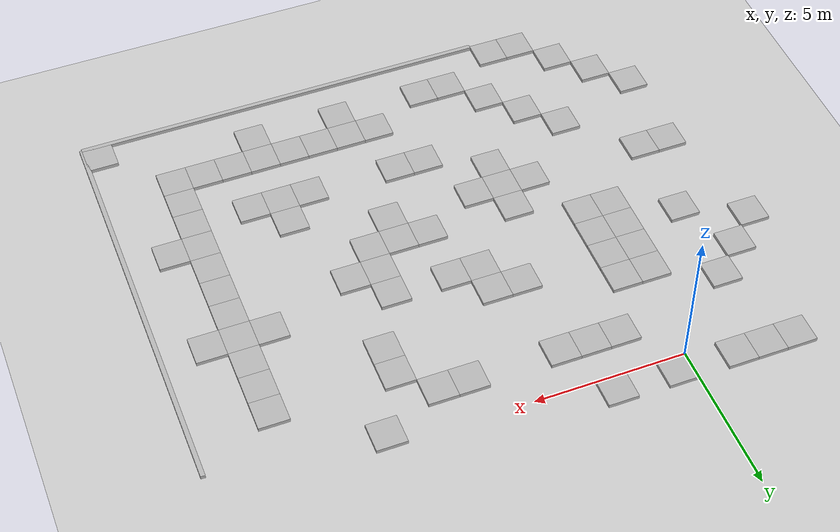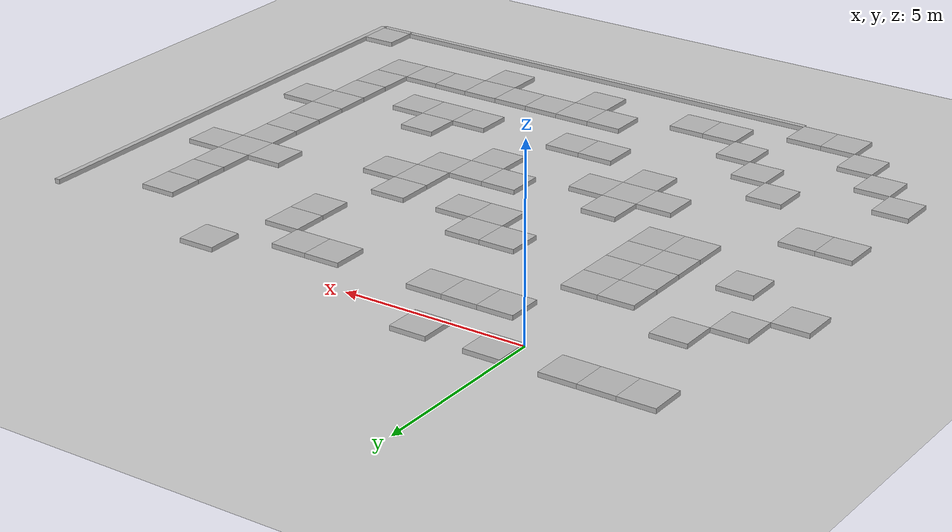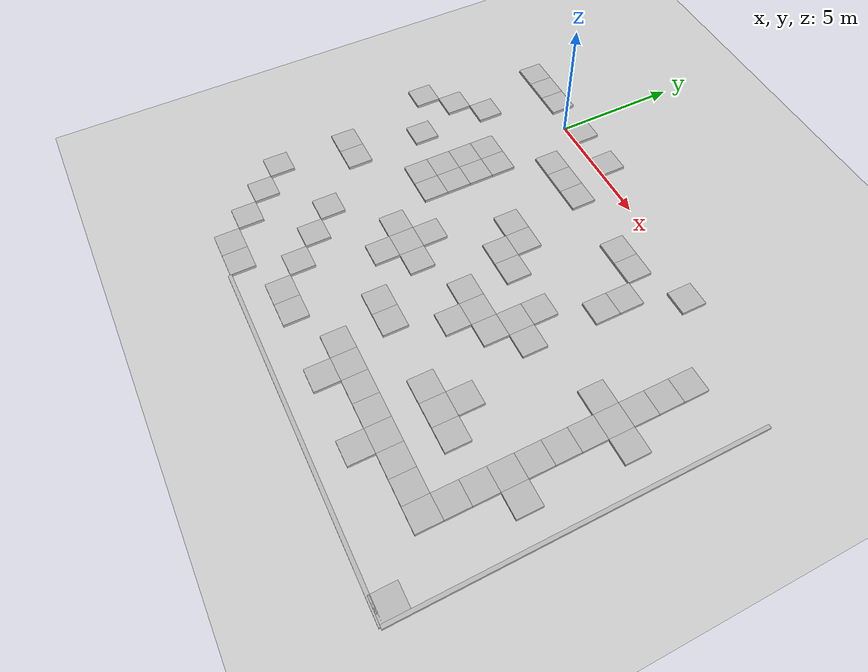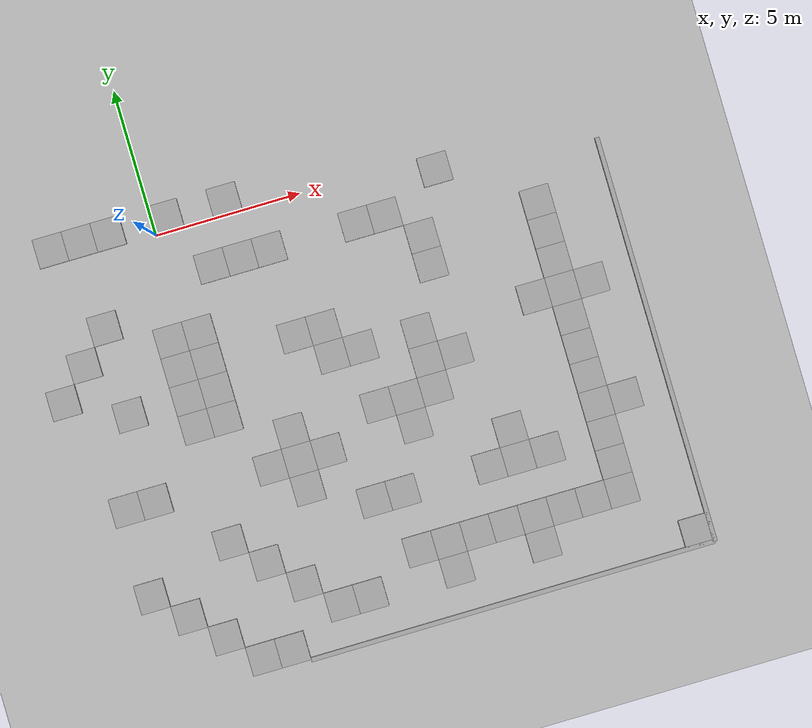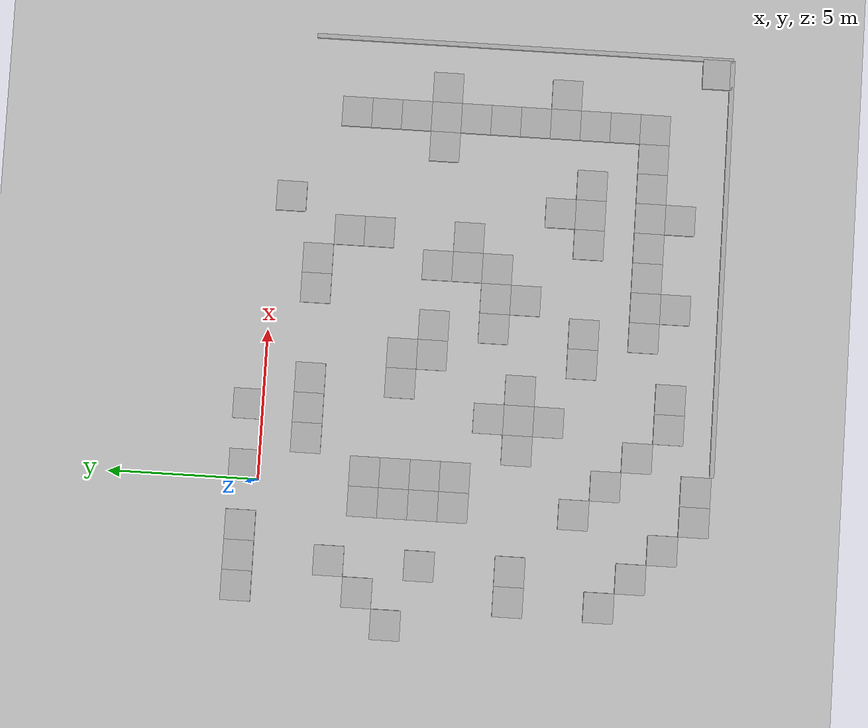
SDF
<sdf version="1.7">
 <world name="default">
  <model name="ground_plane">
   <static>1</static>
   <link name="link">
    <collision name="collision">
     <geometry><plane><normal>0 0 1</normal><size>100 100</size></plane></geometry>
     <surface>
      <contact><collide_bitmask>65535</collide_bitmask></contact>
      <friction><ode><mu>100</mu><mu2>50</mu2></ode></friction>
     </surface>
    </collision>
    <visual name="visual">
     <cast_shadows>0</cast_shadows>
     <geometry><plane><normal>0 0 1</normal><size>100 100</size></plane></geometry>
     <material>
      <script><uri>file://media/materials/scripts/gazebo.material</uri><name>Gazebo/Grey</name></script>
     </material>
    </visual>
   </link>
  </model>
  <model name="concrete_barrier_14m_3">
   <static>1</static>
   <link name="link">
    <collision name="concrete_barrier_14m_01">
     <pose>-0 0 0.3 0 -0 0</pose>
     <geometry><box><size>14 0.15 0.6</size></box></geometry>
    </collision>
    <visual name="concrete_barrier_14m_visual">
     <geometry><mesh><uri>model://concrete_barrier_14m/meshes/concrete_barrier_14m.dae</uri></mesh></geometry>
    </visual>
   </link>
   <pose>15 -8 0 0 -0 0</pose>
  </model>
  <model name="concrete_barrier_14m_6">
   <static>1</static>
   <link name="link">
    <collision name="concrete_barrier_14m_01">
     <pose>-0 0 0.3 0 -0 0</pose>
     <geometry><box><size>14 0.15 0.6</size></box></geometry>
    </collision>
    <visual name="concrete_barrier_14m_visual">
     <geometry><mesh><uri>model://concrete_barrier_14m/meshes/concrete_barrier_14m.dae</uri></mesh></geometry>
    </visual>
   </link>
   <pose>8 -15 0 0 0 -1.56953</pose>
  </model>
  <model name="concrete_cube_1m_2">
   <static>1</static>
   <link name="link">
    <collision name="concrete_cube_1m">
     <pose>-0 0 0.3 0 -0 0</pose>
     <geometry><box><size>1 1 0.6</size></box></geometry>
    </collision>
    <visual name="concrete_cube_1m_visual">
     <geometry><mesh><uri>model://concrete_cube_1m/meshes/concrete_cube_1m.dae</uri></mesh></geometry>
    </visual>
   </link>
   <pose>-1.5 0.5 0 0 -0 0</pose>
  </model>
  <model name="concrete_cube_1m_8">
   <static>1</static>
   <link name="link">
    <collision name="concrete_cube_1m">
     <pose>-0 0 0.3 0 -0 0</pose>
     <geometry><box><size>1 1 0.6</size></box></geometry>
    </collision>
    <visual name="concrete_cube_1m_visual">
     <geometry><mesh><uri>model://concrete_cube_1m/meshes/concrete_cube_1m.dae</uri></mesh></geometry>
    </visual>
   </link>
   <pose>-0.5 -4.5 0 0 -0 0</pose>
  </model>
  <model name="concrete_cube_1m_9">
   <static>1</static>
   <link name="link">
    <collision name="concrete_cube_1m">
     <pose>-0 0 0.3 0 -0 0</pose>
     <geometry><box><size>1 1 0.6</size></box></geometry>
    </collision>
    <visual name="concrete_cube_1m_visual">
     <geometry><mesh><uri>model://concrete_cube_1m/meshes/concrete_cube_1m.dae</uri></mesh></geometry>
    </visual>
   </link>
   <pose>0.5 -4.5 0 0 -0 0</pose>
  </model>
  <model name="concrete_cube_1m_10">
   <static>1</static>
   <link name="link">
    <collision name="concrete_cube_1m">
     <pose>-0 0 0.3 0 -0 0</pose>
     <geometry><box><size>1 1 0.6</size></box></geometry>
    </collision>
    <visual name="concrete_cube_1m_visual">
     <geometry><mesh><uri>model://concrete_cube_1m/meshes/concrete_cube_1m.dae</uri></mesh></geometry>
    </visual>
   </link>
   <pose>4.5 -5.5 0 0 -0 0</pose>
  </model>
  <model name="concrete_cube_1m_11">
   <static>1</static>
   <link name="link">
    <collision name="concrete_cube_1m">
     <pose>-0 0 0.3 0 -0 0</pose>
     <geometry><box><size>1 1 0.6</size></box></geometry>
    </collision>
    <visual name="concrete_cube_1m_visual">
     <geometry><mesh><uri>model://concrete_cube_1m/meshes/concrete_cube_1m.dae</uri></mesh></geometry>
    </visual>
   </link>
   <pose>5.5 -5.5 0 0 -0 0</pose>
  </model>
  <model name="concrete_cube_1m_42">
   <static>1</static>
   <link name="link">
    <collision name="concrete_cube_1m">
     <pose>-0 0 0.3 0 -0 0</pose>
     <geometry><box><size>1 1 0.6</size></box></geometry>
    </collision>
    <visual name="concrete_cube_1m_visual">
     <geometry><mesh><uri>model://concrete_cube_1m/meshes/concrete_cube_1m.dae</uri></mesh></geometry>
    </visual>
   </link>
   <pose>2.51365 0.491319 0 0 -0 0</pose>
  </model>
  <model name="concrete_cube_1m_45">
   <static>1</static>
   <link name="link">
    <collision name="concrete_cube_1m">
     <pose>-0 0 0.3 0 -0 0</pose>
     <geometry><box><size>1 1 0.6</size></box></geometry>
    </collision>
    <visual name="concrete_cube_1m_visual">
     <geometry><mesh><uri>model://concrete_cube_1m/meshes/concrete_cube_1m.dae</uri></mesh></geometry>
    </visual>
   </link>
   <pose>-2.5 0.5 0 0 -0 0</pose>
  </model>
  <model name="concrete_cube_1m_46">
   <static>1</static>
   <link name="link">
    <collision name="concrete_cube_1m">
     <pose>-0 0 0.3 0 -0 0</pose>
     <geometry><box><size>1 1 0.6</size></box></geometry>
    </collision>
    <visual name="concrete_cube_1m_visual">
     <geometry><mesh><uri>model://concrete_cube_1m/meshes/concrete_cube_1m.dae</uri></mesh></geometry>
    </visual>
   </link>
   <pose>-3.5 0.5 0 0 -0 0</pose>
  </model>
  <model name="concrete_cube_1m_64">
   <static>1</static>
   <link name="link">
    <collision name="concrete_cube_1m">
     <pose>-0 0 0.3 0 -0 0</pose>
     <geometry><box><size>1 1 0.6</size></box></geometry>
    </collision>
    <visual name="concrete_cube_1m_visual">
     <geometry><mesh><uri>model://concrete_cube_1m/meshes/concrete_cube_1m.dae</uri></mesh></geometry>
    </visual>
   </link>
   <pose>7.5 -7.5 0 0 -0 0</pose>
  </model>
  <model name="concrete_cube_1m_65">
   <static>1</static>
   <link name="link">
    <collision name="concrete_cube_1m">
     <pose>-0 0 0.3 0 -0 0</pose>
     <geometry><box><size>1 1 0.6</size></box></geometry>
    </collision>
    <visual name="concrete_cube_1m_visual">
     <geometry><mesh><uri>model://concrete_cube_1m/meshes/concrete_cube_1m.dae</uri></mesh></geometry>
    </visual>
   </link>
   <pose>7.5 -6.5 0 0 -0 0</pose>
  </model>
  <model name="concrete_cube_1m_66">
   <static>1</static>
   <link name="link">
    <collision name="concrete_cube_1m">
     <pose>-0 0 0.3 0 -0 0</pose>
     <geometry><box><size>1 1 0.6</size></box></geometry>
    </collision>
    <visual name="concrete_cube_1m_visual">
     <geometry><mesh><uri>model://concrete_cube_1m/meshes/concrete_cube_1m.dae</uri></mesh></geometry>
    </visual>
   </link>
   <pose>7.5 -5.5 0 0 -0 0</pose>
  </model>
  <model name="concrete_cube_1m_67">
   <static>1</static>
   <link name="link">
    <collision name="concrete_cube_1m">
     <pose>-0 0 0.3 0 -0 0</pose>
     <geometry><box><size>1 1 0.6</size></box></geometry>
    </collision>
    <visual name="concrete_cube_1m_visual">
     <geometry><mesh><uri>model://concrete_cube_1m/meshes/concrete_cube_1m.dae</uri></mesh></geometry>
    </visual>
   </link>
   <pose>6.5 -7.5 0 0 -0 0</pose>
  </model>
  <model name="concrete_cube_1m_68">
   <static>1</static>
   <link name="link">
    <collision name="concrete_cube_1m">
     <pose>-0 0 0.3 0 -0 0</pose>
     <geometry><box><size>1 1 0.6</size></box></geometry>
    </collision>
    <visual name="concrete_cube_1m_visual">
     <geometry><mesh><uri>model://concrete_cube_1m/meshes/concrete_cube_1m.dae</uri></mesh></geometry>
    </visual>
   </link>
   <pose>5.5 -7.5 0 0 -0 0</pose>
  </model>
  <model name="concrete_cube_1m_69">
   <static>1</static>
   <link name="link">
    <collision name="concrete_cube_1m">
     <pose>-0 0 0.3 0 -0 0</pose>
     <geometry><box><size>1 1 0.6</size></box></geometry>
    </collision>
    <visual name="concrete_cube_1m_visual">
     <geometry><mesh><uri>model://concrete_cube_1m/meshes/concrete_cube_1m.dae</uri></mesh></geometry>
    </visual>
   </link>
   <pose>8.5 -2.5 0 0 -0 0</pose>
  </model>
  <model name="concrete_cube_1m_70">
   <static>1</static>
   <link name="link">
    <collision name="concrete_cube_1m">
     <pose>-0 0 0.3 0 -0 0</pose>
     <geometry><box><size>1 1 0.6</size></box></geometry>
    </collision>
    <visual name="concrete_cube_1m_visual">
     <geometry><mesh><uri>model://concrete_cube_1m/meshes/concrete_cube_1m.dae</uri></mesh></geometry>
    </visual>
   </link>
   <pose>9.52896 -0.491132 0 0 -0 0</pose>
  </model>
  <model name="concrete_cube_1m_71">
   <static>1</static>
   <link name="link">
    <collision name="concrete_cube_1m">
     <pose>-0 0 0.3 0 -0 0</pose>
     <geometry><box><size>1 1 0.6</size></box></geometry>
    </collision>
    <visual name="concrete_cube_1m_visual">
     <geometry><mesh><uri>model://concrete_cube_1m/meshes/concrete_cube_1m.dae</uri></mesh></geometry>
    </visual>
   </link>
   <pose>7.5 -1.5 0 0 -0 0</pose>
  </model>
  <model name="concrete_cube_1m_72">
   <static>1</static>
   <link name="link">
    <collision name="concrete_cube_1m">
     <pose>-0 0 0.3 0 -0 0</pose>
     <geometry><box><size>1 1 0.6</size></box></geometry>
    </collision>
    <visual name="concrete_cube_1m_visual">
     <geometry><mesh><uri>model://concrete_cube_1m/meshes/concrete_cube_1m.dae</uri></mesh></geometry>
    </visual>
   </link>
   <pose>8.5 -3.5 0 0 -0 0</pose>
  </model>
  <model name="concrete_cube_1m_73">
   <static>1</static>
   <link name="link">
    <collision name="concrete_cube_1m">
     <pose>-0 0 0.3 0 -0 0</pose>
     <geometry><box><size>1 1 0.6</size></box></geometry>
    </collision>
    <visual name="concrete_cube_1m_visual">
     <geometry><mesh><uri>model://concrete_cube_1m/meshes/concrete_cube_1m.dae</uri></mesh></geometry>
    </visual>
   </link>
   <pose>6.5 -1.5 0 0 -0 0</pose>
  </model>
  <model name="concrete_cube_1m_74">
   <static>1</static>
   <link name="link">
    <collision name="concrete_cube_1m">
     <pose>-0 0 0.3 0 -0 0</pose>
     <geometry><box><size>1 1 0.6</size></box></geometry>
    </collision>
    <visual name="concrete_cube_1m_visual">
     <geometry><mesh><uri>model://concrete_cube_1m/meshes/concrete_cube_1m.dae</uri></mesh></geometry>
    </visual>
   </link>
   <pose>4.5 -4.5 0 0 -0 0</pose>
  </model>
  <model name="concrete_cube_1m_75">
   <static>1</static>
   <link name="link">
    <collision name="concrete_cube_1m">
     <pose>-0 0 0.3 0 -0 0</pose>
     <geometry><box><size>1 1 0.6</size></box></geometry>
    </collision>
    <visual name="concrete_cube_1m_visual">
     <geometry><mesh><uri>model://concrete_cube_1m/meshes/concrete_cube_1m.dae</uri></mesh></geometry>
    </visual>
   </link>
   <pose>3.5 -4.5 0 0 -0 0</pose>
  </model>
  <model name="concrete_cube_1m_76">
   <static>1</static>
   <link name="link">
    <collision name="concrete_cube_1m">
     <pose>-0 0 0.3 0 -0 0</pose>
     <geometry><box><size>1 1 0.6</size></box></geometry>
    </collision>
    <visual name="concrete_cube_1m_visual">
     <geometry><mesh><uri>model://concrete_cube_1m/meshes/concrete_cube_1m.dae</uri></mesh></geometry>
    </visual>
   </link>
   <pose>0.5 -3.5 0 0 -0 0</pose>
  </model>
  <model name="concrete_cube_1m_77">
   <static>1</static>
   <link name="link">
    <collision name="concrete_cube_1m">
     <pose>-0 0 0.3 0 -0 0</pose>
     <geometry><box><size>1 1 0.6</size></box></geometry>
    </collision>
    <visual name="concrete_cube_1m_visual">
     <geometry><mesh><uri>model://concrete_cube_1m/meshes/concrete_cube_1m.dae</uri></mesh></geometry>
    </visual>
   </link>
   <pose>-0.5 -3.5 0 0 -0 0</pose>
  </model>
  <model name="concrete_cube_1m_78">
   <static>1</static>
   <link name="link">
    <collision name="concrete_cube_1m">
     <pose>-0 0 0.3 0 -0 0</pose>
     <geometry><box><size>1 1 0.6</size></box></geometry>
    </collision>
    <visual name="concrete_cube_1m_visual">
     <geometry><mesh><uri>model://concrete_cube_1m/meshes/concrete_cube_1m.dae</uri></mesh></geometry>
    </visual>
   </link>
   <pose>0.5 -6.5 0 0 -0 0</pose>
  </model>
  <model name="concrete_cube_1m_79">
   <static>1</static>
   <link name="link">
    <collision name="concrete_cube_1m">
     <pose>-0 0 0.3 0 -0 0</pose>
     <geometry><box><size>1 1 0.6</size></box></geometry>
    </collision>
    <visual name="concrete_cube_1m_visual">
     <geometry><mesh><uri>model://concrete_cube_1m/meshes/concrete_cube_1m.dae</uri></mesh></geometry>
    </visual>
   </link>
   <pose>0.5 -5.5 0 0 -0 0</pose>
  </model>
  <model name="concrete_cube_1m_80">
   <static>1</static>
   <link name="link">
    <collision name="concrete_cube_1m">
     <pose>-0 0 0.3 0 -0 0</pose>
     <geometry><box><size>1 1 0.6</size></box></geometry>
    </collision>
    <visual name="concrete_cube_1m_visual">
     <geometry><mesh><uri>model://concrete_cube_1m/meshes/concrete_cube_1m.dae</uri></mesh></geometry>
    </visual>
   </link>
   <pose>-0.5 -6.5 0 0 -0 0</pose>
  </model>
  <model name="concrete_cube_1m_81">
   <static>1</static>
   <link name="link">
    <collision name="concrete_cube_1m">
     <pose>-0 0 0.3 0 -0 0</pose>
     <geometry><box><size>1 1 0.6</size></box></geometry>
    </collision>
    <visual name="concrete_cube_1m_visual">
     <geometry><mesh><uri>model://concrete_cube_1m/meshes/concrete_cube_1m.dae</uri></mesh></geometry>
    </visual>
   </link>
   <pose>-0.5 -5.5 0 0 -0 0</pose>
  </model>
  <model name="concrete_cube_1m_82">
   <static>1</static>
   <link name="link">
    <collision name="concrete_cube_1m">
     <pose>-0 0 0.3 0 -0 0</pose>
     <geometry><box><size>1 1 0.6</size></box></geometry>
    </collision>
    <visual name="concrete_cube_1m_visual">
     <geometry><mesh><uri>model://concrete_cube_1m/meshes/concrete_cube_1m.dae</uri></mesh></geometry>
    </visual>
   </link>
   <pose>2.5 -8.5 0 0 -0 0</pose>
  </model>
  <model name="concrete_cube_1m_83">
   <static>1</static>
   <link name="link">
    <collision name="concrete_cube_1m">
     <pose>-0 0 0.3 0 -0 0</pose>
     <geometry><box><size>1 1 0.6</size></box></geometry>
    </collision>
    <visual name="concrete_cube_1m_visual">
     <geometry><mesh><uri>model://concrete_cube_1m/meshes/concrete_cube_1m.dae</uri></mesh></geometry>
    </visual>
   </link>
   <pose>3.5 -8.5 0 0 -0 0</pose>
  </model>
  <model name="concrete_cube_1m_84">
   <static>1</static>
   <link name="link">
    <collision name="concrete_cube_1m">
     <pose>-0 0 0.3 0 -0 0</pose>
     <geometry><box><size>1 1 0.6</size></box></geometry>
    </collision>
    <visual name="concrete_cube_1m_visual">
     <geometry><mesh><uri>model://concrete_cube_1m/meshes/concrete_cube_1m.dae</uri></mesh></geometry>
    </visual>
   </link>
   <pose>3.5 -1.5 0 0 -0 0</pose>
  </model>
  <model name="concrete_cube_1m_85">
   <static>1</static>
   <link name="link">
    <collision name="concrete_cube_1m">
     <pose>-0 0 0.3 0 -0 0</pose>
     <geometry><box><size>1 1 0.6</size></box></geometry>
    </collision>
    <visual name="concrete_cube_1m_visual">
     <geometry><mesh><uri>model://concrete_cube_1m/meshes/concrete_cube_1m.dae</uri></mesh></geometry>
    </visual>
   </link>
   <pose>2.5 -1.5 0 0 -0 0</pose>
  </model>
  <model name="concrete_cube_1m_86">
   <static>1</static>
   <link name="link">
    <collision name="concrete_cube_1m">
     <pose>-0 0 0.3 0 -0 0</pose>
     <geometry><box><size>1 1 0.6</size></box></geometry>
    </collision>
    <visual name="concrete_cube_1m_visual">
     <geometry><mesh><uri>model://concrete_cube_1m/meshes/concrete_cube_1m.dae</uri></mesh></geometry>
    </visual>
   </link>
   <pose>1.5 -1.5 0 0 -0 0</pose>
  </model>
  <model name="concrete_cube_1m_87">
   <static>1</static>
   <link name="link">
    <collision name="concrete_cube_1m">
     <pose>-0 0 0.3 0 -0 0</pose>
     <geometry><box><size>1 1 0.6</size></box></geometry>
    </collision>
    <visual name="concrete_cube_1m_visual">
     <geometry><mesh><uri>model://concrete_cube_1m/meshes/concrete_cube_1m.dae</uri></mesh></geometry>
    </visual>
   </link>
   <pose>2.5 -7.5 0 0 -0 0</pose>
  </model>
  <model name="concrete_cube_1m_90">
   <static>1</static>
   <link name="link">
    <collision name="concrete_cube_1m">
     <pose>-0 0 0.3 0 -0 0</pose>
     <geometry><box><size>1 1 0.6</size></box></geometry>
    </collision>
    <visual name="concrete_cube_1m_visual">
     <geometry><mesh><uri>model://concrete_cube_1m/meshes/concrete_cube_1m.dae</uri></mesh></geometry>
    </visual>
   </link>
   <pose>-3.5 -8.5 0 0 -0 0</pose>
  </model>
  <model name="concrete_cube_1m_91">
   <static>1</static>
   <link name="link">
    <collision name="concrete_cube_1m">
     <pose>-0 0 0.3 0 -0 0</pose>
     <geometry><box><size>1 1 0.6</size></box></geometry>
    </collision>
    <visual name="concrete_cube_1m_visual">
     <geometry><mesh><uri>model://concrete_cube_1m/meshes/concrete_cube_1m.dae</uri></mesh></geometry>
    </visual>
   </link>
   <pose>-2.5 -8.5 0 0 -0 0</pose>
  </model>
  <model name="concrete_cube_1m_97">
   <static>1</static>
   <link name="link">
    <collision name="concrete_cube_1m">
     <pose>-0 0 0.3 0 -0 0</pose>
     <geometry><box><size>1 1 0.6</size></box></geometry>
    </collision>
    <visual name="concrete_cube_1m_visual">
     <geometry><mesh><uri>model://concrete_cube_1m/meshes/concrete_cube_1m.dae</uri></mesh></geometry>
    </visual>
   </link>
   <pose>-4.5 -4.5 0 0 -0 0</pose>
  </model>
  <model name="concrete_cube_1m_98">
   <static>1</static>
   <link name="link">
    <collision name="concrete_cube_1m">
     <pose>-0 0 0.3 0 -0 0</pose>
     <geometry><box><size>1 1 0.6</size></box></geometry>
    </collision>
    <visual name="concrete_cube_1m_visual">
     <geometry><mesh><uri>model://concrete_cube_1m/meshes/concrete_cube_1m.dae</uri></mesh></geometry>
    </visual>
   </link>
   <pose>-3.5 -3.5 0 0 -0 0</pose>
  </model>
  <model name="concrete_cube_1m_99">
   <static>1</static>
   <link name="link">
    <collision name="concrete_cube_1m">
     <pose>-0 0 0.3 0 -0 0</pose>
     <geometry><box><size>1 1 0.6</size></box></geometry>
    </collision>
    <visual name="concrete_cube_1m_visual">
     <geometry><mesh><uri>model://concrete_cube_1m/meshes/concrete_cube_1m.dae</uri></mesh></geometry>
    </visual>
   </link>
   <pose>-2.5 -2.5 0 0 -0 0</pose>
  </model>
  <model name="concrete_cube_1m_103">
   <static>1</static>
   <link name="link">
    <collision name="concrete_cube_1m">
     <pose>-0 0 0.3 0 -0 0</pose>
     <geometry><box><size>1 1 0.6</size></box></geometry>
    </collision>
    <visual name="concrete_cube_1m_visual">
     <geometry><mesh><uri>model://concrete_cube_1m/meshes/concrete_cube_1m.dae</uri></mesh></geometry>
    </visual>
   </link>
   <pose>-2.5 -5.5 0 0 -0 0</pose>
  </model>
  <model name="concrete_cube_1m_104">
   <static>1</static>
   <link name="link">
    <collision name="concrete_cube_1m">
     <pose>-0 0 0.3 0 -0 0</pose>
     <geometry><box><size>1 1 0.6</size></box></geometry>
    </collision>
    <visual name="concrete_cube_1m_visual">
     <geometry><mesh><uri>model://concrete_cube_1m/meshes/concrete_cube_1m.dae</uri></mesh></geometry>
    </visual>
   </link>
   <pose>6.5 -8.5 0 0 -0 0</pose>
  </model>
  <model name="concrete_cube_1m_105">
   <static>1</static>
   <link name="link">
    <collision name="concrete_cube_1m">
     <pose>-0 0 0.3 0 -0 0</pose>
     <geometry><box><size>1 1 0.6</size></box></geometry>
    </collision>
    <visual name="concrete_cube_1m_visual">
     <geometry><mesh><uri>model://concrete_cube_1m/meshes/concrete_cube_1m.dae</uri></mesh></geometry>
    </visual>
   </link>
   <pose>8.5 -6.5 0 0 -0 0</pose>
  </model>
  <model name="concrete_cube_1m_106">
   <static>1</static>
   <link name="link">
    <collision name="concrete_cube_1m">
     <pose>-0 0 0.3 0 -0 0</pose>
     <geometry><box><size>1 1 0.6</size></box></geometry>
    </collision>
    <visual name="concrete_cube_1m_visual">
     <geometry><mesh><uri>model://concrete_cube_1m/meshes/concrete_cube_1m.dae</uri></mesh></geometry>
    </visual>
   </link>
   <pose>9.5 -9.5 0 0 -0 0</pose>
  </model>
  <model name="concrete_cube_1m_107">
   <static>1</static>
   <link name="link">
    <collision name="concrete_cube_1m">
     <pose>-0 0 0.3 0 -0 0</pose>
     <geometry><box><size>1 1 0.6</size></box></geometry>
    </collision>
    <visual name="concrete_cube_1m_visual">
     <geometry><mesh><uri>model://concrete_cube_1m/meshes/concrete_cube_1m.dae</uri></mesh></geometry>
    </visual>
   </link>
   <pose>0.5 -14.5 0 0 -0 0</pose>
  </model>
  <model name="concrete_cube_1m_108">
   <static>1</static>
   <link name="link">
    <collision name="concrete_cube_1m">
     <pose>-0 0 0.3 0 -0 0</pose>
     <geometry><box><size>1 1 0.6</size></box></geometry>
    </collision>
    <visual name="concrete_cube_1m_visual">
     <geometry><mesh><uri>model://concrete_cube_1m/meshes/concrete_cube_1m.dae</uri></mesh></geometry>
    </visual>
   </link>
   <pose>-0.5 -14.5 0 0 -0 0</pose>
  </model>
  <model name="concrete_cube_1m_146">
   <static>1</static>
   <link name="link">
    <collision name="concrete_cube_1m">
     <pose>-0 0 0.3 0 -0 0</pose>
     <geometry><box><size>1 1 0.6</size></box></geometry>
    </collision>
    <visual name="concrete_cube_1m_visual">
     <geometry><mesh><uri>model://concrete_cube_1m/meshes/concrete_cube_1m.dae</uri></mesh></geometry>
    </visual>
   </link>
   <pose>0.5 0.5 0 0 -0 0</pose>
  </model>
  <model name="concrete_cube_1m_192">
   <static>1</static>
   <link name="link">
    <collision name="concrete_cube_1m">
     <pose>-0 0 0.3 0 -0 0</pose>
     <geometry><box><size>1 1 0.6</size></box></geometry>
    </collision>
    <visual name="concrete_cube_1m_visual">
     <geometry><mesh><uri>model://concrete_cube_1m/meshes/concrete_cube_1m.dae</uri></mesh></geometry>
    </visual>
   </link>
   <pose>-1.5 -13.5 0 0 -0 0</pose>
  </model>
  <model name="concrete_cube_1m_193">
   <static>1</static>
   <link name="link">
    <collision name="concrete_cube_1m">
     <pose>-0 0 0.3 0 -0 0</pose>
     <geometry><box><size>1 1 0.6</size></box></geometry>
    </collision>
    <visual name="concrete_cube_1m_visual">
     <geometry><mesh><uri>model://concrete_cube_1m/meshes/concrete_cube_1m.dae</uri></mesh></geometry>
    </visual>
   </link>
   <pose>-2.5 -12.5 0 0 -0 0</pose>
  </model>
  <model name="concrete_cube_1m_194">
   <static>1</static>
   <link name="link">
    <collision name="concrete_cube_1m">
     <pose>-0 0 0.3 0 -0 0</pose>
     <geometry><box><size>1 1 0.6</size></box></geometry>
    </collision>
    <visual name="concrete_cube_1m_visual">
     <geometry><mesh><uri>model://concrete_cube_1m/meshes/concrete_cube_1m.dae</uri></mesh></geometry>
    </visual>
   </link>
   <pose>-3.5 -11.5 0 0 -0 0</pose>
  </model>
  <model name="concrete_cube_1m_207">
   <static>1</static>
   <link name="link">
    <collision name="concrete_cube_1m">
     <pose>-0 0 0.3 0 -0 0</pose>
     <geometry><box><size>1 1 0.6</size></box></geometry>
    </collision>
    <visual name="concrete_cube_1m_visual">
     <geometry><mesh><uri>model://concrete_cube_1m/meshes/concrete_cube_1m.dae</uri></mesh></geometry>
    </visual>
   </link>
   <pose>-0.5 -10.5 0 0 -0 0</pose>
  </model>
  <model name="concrete_cube_1m_211">
   <static>1</static>
   <link name="link">
    <collision name="concrete_cube_1m">
     <pose>-0 0 0.3 0 -0 0</pose>
     <geometry><box><size>1 1 0.6</size></box></geometry>
    </collision>
    <visual name="concrete_cube_1m_visual">
     <geometry><mesh><uri>model://concrete_cube_1m/meshes/concrete_cube_1m.dae</uri></mesh></geometry>
    </visual>
   </link>
   <pose>2.5 -9.5 0 0 -0 0</pose>
  </model>
  <model name="concrete_cube_1m_212">
   <static>1</static>
   <link name="link">
    <collision name="concrete_cube_1m">
     <pose>-0 0 0.3 0 -0 0</pose>
     <geometry><box><size>1 1 0.6</size></box></geometry>
    </collision>
    <visual name="concrete_cube_1m_visual">
     <geometry><mesh><uri>model://concrete_cube_1m/meshes/concrete_cube_1m.dae</uri></mesh></geometry>
    </visual>
   </link>
   <pose>1.5 -8.5 0 0 -0 0</pose>
  </model>
  <model name="concrete_cube_1m_213">
   <static>1</static>
   <link name="link">
    <collision name="concrete_cube_1m">
     <pose>-0 0 0.3 0 -0 0</pose>
     <geometry><box><size>1 1 0.6</size></box></geometry>
    </collision>
    <visual name="concrete_cube_1m_visual">
     <geometry><mesh><uri>model://concrete_cube_1m/meshes/concrete_cube_1m.dae</uri></mesh></geometry>
    </visual>
   </link>
   <pose>0.5 -11.5 0 0 -0 0</pose>
  </model>
  <model name="concrete_cube_1m_214">
   <static>1</static>
   <link name="link">
    <collision name="concrete_cube_1m">
     <pose>-0 0 0.3 0 -0 0</pose>
     <geometry><box><size>1 1 0.6</size></box></geometry>
    </collision>
    <visual name="concrete_cube_1m_visual">
     <geometry><mesh><uri>model://concrete_cube_1m/meshes/concrete_cube_1m.dae</uri></mesh></geometry>
    </visual>
   </link>
   <pose>1.5 -12.5 0 0 -0 0</pose>
  </model>
  <model name="concrete_cube_1m_215">
   <static>1</static>
   <link name="link">
    <collision name="concrete_cube_1m">
     <pose>-0 0 0.3 0 -0 0</pose>
     <geometry><box><size>1 1 0.6</size></box></geometry>
    </collision>
    <visual name="concrete_cube_1m_visual">
     <geometry><mesh><uri>model://concrete_cube_1m/meshes/concrete_cube_1m.dae</uri></mesh></geometry>
    </visual>
   </link>
   <pose>2.5 -13.5 0 0 -0 0</pose>
  </model>
  <model name="concrete_cube_1m_216">
   <static>1</static>
   <link name="link">
    <collision name="concrete_cube_1m">
     <pose>-0 0 0.3 0 -0 0</pose>
     <geometry><box><size>1 1 0.6</size></box></geometry>
    </collision>
    <visual name="concrete_cube_1m_visual">
     <geometry><mesh><uri>model://concrete_cube_1m/meshes/concrete_cube_1m.dae</uri></mesh></geometry>
    </visual>
   </link>
   <pose>9.5 -10.5 0 0 -0 0</pose>
  </model>
  <model name="concrete_cube_1m_217">
   <static>1</static>
   <link name="link">
    <collision name="concrete_cube_1m">
     <pose>-0 0 0.3 0 -0 0</pose>
     <geometry><box><size>1 1 0.6</size></box></geometry>
    </collision>
    <visual name="concrete_cube_1m_visual">
     <geometry><mesh><uri>model://concrete_cube_1m/meshes/concrete_cube_1m.dae</uri></mesh></geometry>
    </visual>
   </link>
   <pose>10.5 -10.5 0 0 -0 0</pose>
  </model>
  <model name="concrete_cube_1m_218">
   <static>1</static>
   <link name="link">
    <collision name="concrete_cube_1m">
     <pose>-0 0 0.3 0 -0 0</pose>
     <geometry><box><size>1 1 0.6</size></box></geometry>
    </collision>
    <visual name="concrete_cube_1m_visual">
     <geometry><mesh><uri>model://concrete_cube_1m/meshes/concrete_cube_1m.dae</uri></mesh></geometry>
    </visual>
   </link>
   <pose>8.5 -10.5 0 0 -0 0</pose>
  </model>
  <model name="concrete_cube_1m_219">
   <static>1</static>
   <link name="link">
    <collision name="concrete_cube_1m">
     <pose>-0 0 0.3 0 -0 0</pose>
     <geometry><box><size>1 1 0.6</size></box></geometry>
    </collision>
    <visual name="concrete_cube_1m_visual">
     <geometry><mesh><uri>model://concrete_cube_1m/meshes/concrete_cube_1m.dae</uri></mesh></geometry>
    </visual>
   </link>
   <pose>12.5 -12.5 0 0 -0 0</pose>
  </model>
  <model name="concrete_cube_1m_220">
   <static>1</static>
   <link name="link">
    <collision name="concrete_cube_1m">
     <pose>-0 0 0.3 0 -0 0</pose>
     <geometry><box><size>1 1 0.6</size></box></geometry>
    </collision>
    <visual name="concrete_cube_1m_visual">
     <geometry><mesh><uri>model://concrete_cube_1m/meshes/concrete_cube_1m.dae</uri></mesh></geometry>
    </visual>
   </link>
   <pose>11.5 -12.5 0 0 -0 0</pose>
  </model>
  <model name="concrete_cube_1m_221">
   <static>1</static>
   <link name="link">
    <collision name="concrete_cube_1m">
     <pose>-0 0 0.3 0 -0 0</pose>
     <geometry><box><size>1 1 0.6</size></box></geometry>
    </collision>
    <visual name="concrete_cube_1m_visual">
     <geometry><mesh><uri>model://concrete_cube_1m/meshes/concrete_cube_1m.dae</uri></mesh></geometry>
    </visual>
   </link>
   <pose>10.5 -12.5 0 0 -0 0</pose>
  </model>
  <model name="concrete_cube_1m_222">
   <static>1</static>
   <link name="link">
    <collision name="concrete_cube_1m">
     <pose>-0 0 0.3 0 -0 0</pose>
     <geometry><box><size>1 1 0.6</size></box></geometry>
    </collision>
    <visual name="concrete_cube_1m_visual">
     <geometry><mesh><uri>model://concrete_cube_1m/meshes/concrete_cube_1m.dae</uri></mesh></geometry>
    </visual>
   </link>
   <pose>9.5 -12.5 0 0 -0 0</pose>
  </model>
  <model name="concrete_cube_1m_223">
   <static>1</static>
   <link name="link">
    <collision name="concrete_cube_1m">
     <pose>-0 0 0.3 0 -0 0</pose>
     <geometry><box><size>1 1 0.6</size></box></geometry>
    </collision>
    <visual name="concrete_cube_1m_visual">
     <geometry><mesh><uri>model://concrete_cube_1m/meshes/concrete_cube_1m.dae</uri></mesh></geometry>
    </visual>
   </link>
   <pose>8.5 -12.5 0 0 -0 0</pose>
  </model>
  <model name="concrete_cube_1m_224">
   <static>1</static>
   <link name="link">
    <collision name="concrete_cube_1m">
     <pose>-0 0 0.3 0 -0 0</pose>
     <geometry><box><size>1 1 0.6</size></box></geometry>
    </collision>
    <visual name="concrete_cube_1m_visual">
     <geometry><mesh><uri>model://concrete_cube_1m/meshes/concrete_cube_1m.dae</uri></mesh></geometry>
    </visual>
   </link>
   <pose>7.5 -12.5 0 0 -0 0</pose>
  </model>
  <model name="concrete_cube_1m_225">
   <static>1</static>
   <link name="link">
    <collision name="concrete_cube_1m">
     <pose>-0 0 0.3 0 -0 0</pose>
     <geometry><box><size>1 1 0.6</size></box></geometry>
    </collision>
    <visual name="concrete_cube_1m_visual">
     <geometry><mesh><uri>model://concrete_cube_1m/meshes/concrete_cube_1m.dae</uri></mesh></geometry>
    </visual>
   </link>
   <pose>6.5 -12.5 0 0 -0 0</pose>
  </model>
  <model name="concrete_cube_1m_226">
   <static>1</static>
   <link name="link">
    <collision name="concrete_cube_1m">
     <pose>-0 0 0.3 0 -0 0</pose>
     <geometry><box><size>1 1 0.6</size></box></geometry>
    </collision>
    <visual name="concrete_cube_1m_visual">
     <geometry><mesh><uri>model://concrete_cube_1m/meshes/concrete_cube_1m.dae</uri></mesh></geometry>
    </visual>
   </link>
   <pose>5.5 -12.5 0 0 -0 0</pose>
  </model>
  <model name="concrete_cube_1m_227">
   <static>1</static>
   <link name="link">
    <collision name="concrete_cube_1m">
     <pose>-0 0 0.3 0 -0 0</pose>
     <geometry><box><size>1 1 0.6</size></box></geometry>
    </collision>
    <visual name="concrete_cube_1m_visual">
     <geometry><mesh><uri>model://concrete_cube_1m/meshes/concrete_cube_1m.dae</uri></mesh></geometry>
    </visual>
   </link>
   <pose>12.5 -11.5 0 0 -0 0</pose>
  </model>
  <model name="concrete_cube_1m_228">
   <static>1</static>
   <link name="link">
    <collision name="concrete_cube_1m">
     <pose>-0 0 0.3 0 -0 0</pose>
     <geometry><box><size>1 1 0.6</size></box></geometry>
    </collision>
    <visual name="concrete_cube_1m_visual">
     <geometry><mesh><uri>model://concrete_cube_1m/meshes/concrete_cube_1m.dae</uri></mesh></geometry>
    </visual>
   </link>
   <pose>12.5 -10.5 0 0 -0 0</pose>
  </model>
  <model name="concrete_cube_1m_229">
   <static>1</static>
   <link name="link">
    <collision name="concrete_cube_1m">
     <pose>-0 0 0.3 0 -0 0</pose>
     <geometry><box><size>1 1 0.6</size></box></geometry>
    </collision>
    <visual name="concrete_cube_1m_visual">
     <geometry><mesh><uri>model://concrete_cube_1m/meshes/concrete_cube_1m.dae</uri></mesh></geometry>
    </visual>
   </link>
   <pose>12.5 -9.5 0 0 -0 0</pose>
  </model>
  <model name="concrete_cube_1m_230">
   <static>1</static>
   <link name="link">
    <collision name="concrete_cube_1m">
     <pose>-0 0 0.3 0 -0 0</pose>
     <geometry><box><size>1 1 0.6</size></box></geometry>
    </collision>
    <visual name="concrete_cube_1m_visual">
     <geometry><mesh><uri>model://concrete_cube_1m/meshes/concrete_cube_1m.dae</uri></mesh></geometry>
    </visual>
   </link>
   <pose>12.5 -8.5 0 0 -0 0</pose>
  </model>
  <model name="concrete_cube_1m_231">
   <static>1</static>
   <link name="link">
    <collision name="concrete_cube_1m">
     <pose>-0 0 0.3 0 -0 0</pose>
     <geometry><box><size>1 1 0.6</size></box></geometry>
    </collision>
    <visual name="concrete_cube_1m_visual">
     <geometry><mesh><uri>model://concrete_cube_1m/meshes/concrete_cube_1m.dae</uri></mesh></geometry>
    </visual>
   </link>
   <pose>12.5 -7.5 0 0 -0 0</pose>
  </model>
  <model name="concrete_cube_1m_232">
   <static>1</static>
   <link name="link">
    <collision name="concrete_cube_1m">
     <pose>-0 0 0.3 0 -0 0</pose>
     <geometry><box><size>1 1 0.6</size></box></geometry>
    </collision>
    <visual name="concrete_cube_1m_visual">
     <geometry><mesh><uri>model://concrete_cube_1m/meshes/concrete_cube_1m.dae</uri></mesh></geometry>
    </visual>
   </link>
   <pose>12.5 -6.5 0 0 -0 0</pose>
  </model>
  <model name="concrete_cube_1m_233">
   <static>1</static>
   <link name="link">
    <collision name="concrete_cube_1m">
     <pose>-0 0 0.3 0 -0 0</pose>
     <geometry><box><size>1 1 0.6</size></box></geometry>
    </collision>
    <visual name="concrete_cube_1m_visual">
     <geometry><mesh><uri>model://concrete_cube_1m/meshes/concrete_cube_1m.dae</uri></mesh></geometry>
    </visual>
   </link>
   <pose>12.5 -5.5 0 0 -0 0</pose>
  </model>
  <model name="concrete_cube_1m_234">
   <static>1</static>
   <link name="link">
    <collision name="concrete_cube_1m">
     <pose>-0 0 0.3 0 -0 0</pose>
     <geometry><box><size>1 1 0.6</size></box></geometry>
    </collision>
    <visual name="concrete_cube_1m_visual">
     <geometry><mesh><uri>model://concrete_cube_1m/meshes/concrete_cube_1m.dae</uri></mesh></geometry>
    </visual>
   </link>
   <pose>12.5 -4.5 0 0 -0 0</pose>
  </model>
  <model name="concrete_cube_1m_235">
   <static>1</static>
   <link name="link">
    <collision name="concrete_cube_1m">
     <pose>-0 0 0.3 0 -0 0</pose>
     <geometry><box><size>1 1 0.6</size></box></geometry>
    </collision>
    <visual name="concrete_cube_1m_visual">
     <geometry><mesh><uri>model://concrete_cube_1m/meshes/concrete_cube_1m.dae</uri></mesh></geometry>
    </visual>
   </link>
   <pose>12.5 -3.5 0 0 -0 0</pose>
  </model>
  <model name="concrete_cube_1m_236">
   <static>1</static>
   <link name="link">
    <collision name="concrete_cube_1m">
     <pose>-0 0 0.3 0 -0 0</pose>
     <geometry><box><size>1 1 0.6</size></box></geometry>
    </collision>
    <visual name="concrete_cube_1m_visual">
     <geometry><mesh><uri>model://concrete_cube_1m/meshes/concrete_cube_1m.dae</uri></mesh></geometry>
    </visual>
   </link>
   <pose>12.5 -2.5 0 0 -0 0</pose>
  </model>
  <model name="concrete_cube_1m_237">
   <static>1</static>
   <link name="link">
    <collision name="concrete_cube_1m">
     <pose>-0 0 0.3 0 -0 0</pose>
     <geometry><box><size>1 1 0.6</size></box></geometry>
    </collision>
    <visual name="concrete_cube_1m_visual">
     <geometry><mesh><uri>model://concrete_cube_1m/meshes/concrete_cube_1m.dae</uri></mesh></geometry>
    </visual>
   </link>
   <pose>14.5 -14.5 0 0 -0 0</pose>
  </model>
  <model name="concrete_cube_1m_238">
   <static>1</static>
   <link name="link">
    <collision name="concrete_cube_1m">
     <pose>-0 0 0.3 0 -0 0</pose>
     <geometry><box><size>1 1 0.6</size></box></geometry>
    </collision>
    <visual name="concrete_cube_1m_visual">
     <geometry><mesh><uri>model://concrete_cube_1m/meshes/concrete_cube_1m.dae</uri></mesh></geometry>
    </visual>
   </link>
   <pose>11.5 -5.5 0 0 -0 0</pose>
  </model>
  <model name="concrete_cube_1m_239">
   <static>1</static>
   <link name="link">
    <collision name="concrete_cube_1m">
     <pose>-0 0 0.3 0 -0 0</pose>
     <geometry><box><size>1 1 0.6</size></box></geometry>
    </collision>
    <visual name="concrete_cube_1m_visual">
     <geometry><mesh><uri>model://concrete_cube_1m/meshes/concrete_cube_1m.dae</uri></mesh></geometry>
    </visual>
   </link>
   <pose>13.5 -9.5 0 0 -0 0</pose>
  </model>
  <model name="concrete_cube_1m_240">
   <static>1</static>
   <link name="link">
    <collision name="concrete_cube_1m">
     <pose>-0 0 0.3 0 -0 0</pose>
     <geometry><box><size>1 1 0.6</size></box></geometry>
    </collision>
    <visual name="concrete_cube_1m_visual">
     <geometry><mesh><uri>model://concrete_cube_1m/meshes/concrete_cube_1m.dae</uri></mesh></geometry>
    </visual>
   </link>
   <pose>13.5 -5.5 0 0 -0 0</pose>
  </model>
  <model name="concrete_cube_1m_241">
   <static>1</static>
   <link name="link">
    <collision name="concrete_cube_1m">
     <pose>-0 0 0.3 0 -0 0</pose>
     <geometry><box><size>1 1 0.6</size></box></geometry>
    </collision>
    <visual name="concrete_cube_1m_visual">
     <geometry><mesh><uri>model://concrete_cube_1m/meshes/concrete_cube_1m.dae</uri></mesh></geometry>
    </visual>
   </link>
   <pose>9.5 -13.5 0 0 -0 0</pose>
  </model>
  <model name="concrete_cube_1m_242">
   <static>1</static>
   <link name="link">
    <collision name="concrete_cube_1m">
     <pose>-0 0 0.3 0 -0 0</pose>
     <geometry><box><size>1 1 0.6</size></box></geometry>
    </collision>
    <visual name="concrete_cube_1m_visual">
     <geometry><mesh><uri>model://concrete_cube_1m/meshes/concrete_cube_1m.dae</uri></mesh></geometry>
    </visual>
   </link>
   <pose>6.5 -13.5 0 0 -0 0</pose>
  </model>
  <model name="concrete_cube_1m_243">
   <static>1</static>
   <link name="link">
    <collision name="concrete_cube_1m">
     <pose>-0 0 0.3 0 -0 0</pose>
     <geometry><box><size>1 1 0.6</size></box></geometry>
    </collision>
    <visual name="concrete_cube_1m_visual">
     <geometry><mesh><uri>model://concrete_cube_1m/meshes/concrete_cube_1m.dae</uri></mesh></geometry>
    </visual>
   </link>
   <pose>3.5 -13.5 0 0 -0 0</pose>
  </model>
  <model name="concrete_cube_1m_244">
   <static>1</static>
   <link name="link">
    <collision name="concrete_cube_1m">
     <pose>-0 0 0.3 0 -0 0</pose>
     <geometry><box><size>1 1 0.6</size></box></geometry>
    </collision>
    <visual name="concrete_cube_1m_visual">
     <geometry><mesh><uri>model://concrete_cube_1m/meshes/concrete_cube_1m.dae</uri></mesh></geometry>
    </visual>
   </link>
   <pose>5.5 -10.5 0 0 -0 0</pose>
  </model>
  <model name="concrete_cube_1m_245">
   <static>1</static>
   <link name="link">
    <collision name="concrete_cube_1m">
     <pose>-0 0 0.3 0 -0 0</pose>
     <geometry><box><size>1 1 0.6</size></box></geometry>
    </collision>
    <visual name="concrete_cube_1m_visual">
     <geometry><mesh><uri>model://concrete_cube_1m/meshes/concrete_cube_1m.dae</uri></mesh></geometry>
    </visual>
   </link>
   <pose>4.5 -10.5 0 0 -0 0</pose>
  </model>
 </world>
</sdf>
